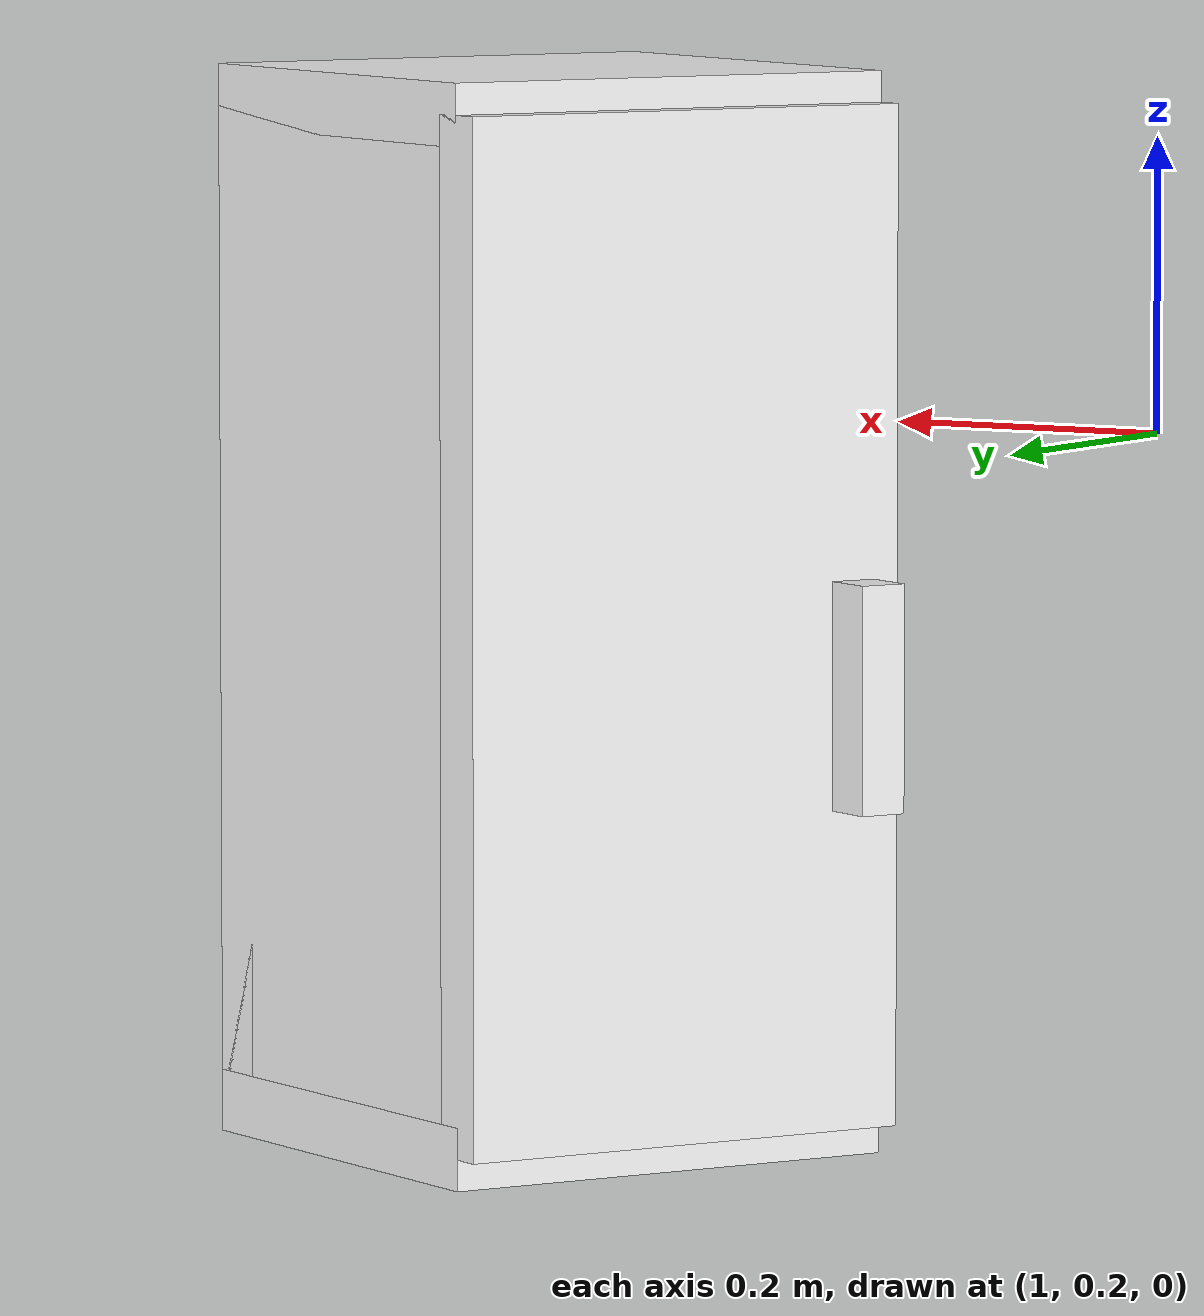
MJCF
<mujoco model="cabinet">
    <compiler angle="radian" eulerseq='zxy' />
    <option gravity = "0 0 0" />
    <option>
        <flag contact = "disable"/>
    </option>
    <statistic	extent="1.0" center="0.0 0.0 0.0"/>
    <visual>
        <map fogstart="3" fogend="5" force="0.1" znear=" 0.100000 " zfar=" 12.000000 "/>
    </visual>
    <size njmax="500" nconmax="100" />
    <actuator>
        <velocity joint="bottom_left_hinge" name="viva_revolution" kv='10'></velocity>
    </actuator>
    <asset>
        <texture builtin="flat" name="tabletex" height="32" width="32" rgb1="1 1 1" type="cube"></texture>
        <texture builtin="flat" name="objtex" height="32" width="32" rgb1="1 1 1" type="cube"></texture>
        <texture builtin="flat" name="handletex" height="32" width="32" rgb1="1 1 1" type="cube"></texture>
        <texture builtin="flat" name="wallpaper" height="32" width="32" rgb1="1 1 1" type="cube"></texture>
        <material name="geomTable" shininess="0.03" specular="0.75" texture="tabletex"></material>
        <material name="geomObj" shininess="0.03" specular="0.75" texture="objtex"></material>
        <material name="geomHandle" shininess="0.03" specular="0.75" texture="handletex"></material>
        <material name="bg" shininess="0.03" specular="0.75" texture="wallpaper"></material>
    </asset>
    <worldbody>
            <body name="cabinet_bottom" pos= " 1.355452 0.404484 -0.461051 "  quat= " 0.236053 0.000000 0.000000 0.971740" >
                <inertial pos="0 0 0" mass="1" diaginertia="1 1 1" />
                <geom size= " 0.159029 0.164285 0.021046 "  type="box" material="geomObj" name="b"/>
                <body name="cabinet_left" pos= " 0.000000 -0.143239 0.343365 " >
                    <inertial pos="0 0 0" mass="1" diaginertia="1 1 1" />
                    <geom size= " 0.159029 0.021046 0.343365 "  type="box" material="geomObj" name="c" />
                </body>
                <body name="cabinet_right" pos= " 0.000000 0.143239 0.343365 " >
                    <inertial pos="0 0 0" mass="1" diaginertia="1 1 1" />
                    <geom size= " 0.159029 0.021046 0.343365 "  type="box" material="geomObj" name="d" />
                </body>
                <body name="cabinet_top" pos= " 0.000000 0.000000 0.686729 " >
                    <inertial pos="0 0 0" mass="1" diaginertia="1 1 1" />
                    <geom size= " 0.159029 0.164285 0.021046 "  type="box" material="geomObj" name="e"/>
                </body>
                <body name="cabinet_back" pos= " -0.137983 0.000000 0.343365 "  >
                    <inertial pos="0 0 0" mass="1" diaginertia="1 1 1" />
                    <geom size= " 0.021046 0.164285 0.343365 "  type="box" material="geomObj" name="f" />
                </body>
                <body name="cabinet_left_hinge" pos= " 0.159029 -0.164285 0.343365 " >
                    <inertial pos= " 0.000000 0.164285 0.000000 "  mass="1" diaginertia="1 1 1" />
                    <joint name="bottom_left_hinge" type="hinge" pos="0 0 0" axis="0 0 1" limited="true" range= "-2.3 0"  />
                    <geom size= " 0.021046 0.164285 0.343365 "  pos= " 0.000000 0.164285 0.000000 "  type="box" material="geomObj" name="g"/>
                    <body name="handle_link" pos= " 0.039757 0.293984 -0.050524 " >
                        <inertial pos="0 0 0" mass="1" diaginertia="1 1 1" />
                        <geom size= " 0.018817 0.016380 0.076891 "  type="box" material="geomHandle" name="h"/>
                    </body>
                </body>
            </body>
        <body name="external_camera_body_0" pos="0.0 0 0.00">
            <camera euler="-1.57 1.57 0.0" fovy=" 54.280851 " name="external_camera_0" pos="0.0 0 0"></camera>
            <inertial pos= " 0.00 0.0 0.000000 " mass="1" diaginertia="1 1 1" />
            <joint name="cam_j" pos="0.0 0 0" axis = "1 0 0" type="free" />
        </body>
    </worldbody>
</mujoco>
